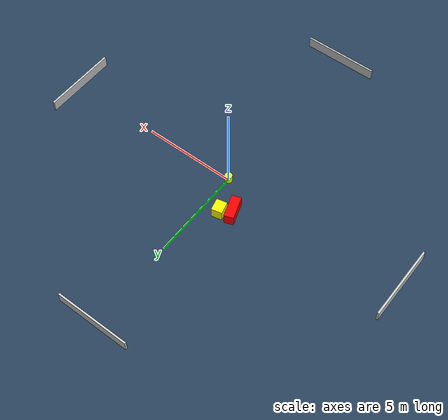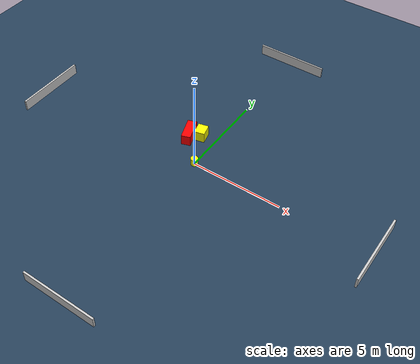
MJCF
<?xml version="1.0" ?>
<mujoco model="generated_environment">
  <option timestep="0.01" integrator="RK4" cone="elliptic"/>
  <default>
    <geom density="1"/>
  </default>
  <asset>
    <texture builtin="gradient" height="3072" name="skybox" rgb1="0.3 0.5 0.7" rgb2="0 0 0" type="skybox" width="512"/>
    <texture builtin="checker" height="300" name="groundplane" rgb1="0.2 0.3 0.4" rgb2="0.1 0.2 0.3" type="2d" width="300"/>
    <material name="groundplane" reflectance="0.2" texrepeat="5 5" texture="groundplane"/>
  </asset>
  <worldbody>
    <light dir="0 0 -1" directional="true" pos="0 0 1.5"/>
    <geom condim="3" friction="0.5 0.005 0.001" material="groundplane" name="floor" pos="0 0 0" size="0 0 0.05" type="plane"/>
    <body name="walls">
      <geom name="wall_1" condim="4" pos="-10.0 0.0 0.3" rgba="0.800000011920929 0.800000011920929 0.800000011920929 1.0" size="0.05 2.0 0.3" type="box"/>
      <geom name="wall_2" condim="4" pos="10.0 0.0 0.3" rgba="0.800000011920929 0.800000011920929 0.800000011920929 1.0" size="0.05 2.0 0.3" type="box"/>
      <geom name="wall_3" condim="4" pos="0.0 -10.0 0.3" rgba="0.800000011920929 0.800000011920929 0.800000011920929 1.0" size="2.0 0.05 0.3" type="box"/>
      <geom name="wall_4" condim="4" pos="0.0 10.0 0.3" rgba="0.800000011920929 0.800000011920929 0.800000011920929 1.0" size="2.0 0.05 0.3" type="box"/>
    </body>
    <body name="robot">
      <joint name="joint_x" type="slide" pos="0 0 0" axis="1 0 0"/>
      <joint name="joint_y" type="slide" pos="0 0 0" axis="0 1 0"/>
      <geom name="robot" type="cylinder" pos="0.0 0.0 0.2" size="0.2 0.2 0.0" mass="5.0" friction="1.0 0.005 0.0001" condim="4" rgba="1.0 1.0 0.0 1.0"/>
    </body>
    <body name="obstacle_1_movable">
      <geom name="obstacle_1_movable" condim="4" pos="-0.8327670190395129 1.8140060769972677 0.3" euler="0 0 103.26097498460123" friction="0.0 0.005 0.001" rgba="1.0 1.0 0.0 1.0" size="0.33442663188785593 0.28376750781476295 0.3" type="box" mass="0.1"/>
      <joint type="free"/>
    </body>
    <body name="obstacle_2_static">
      <geom name="obstacle_2_static" condim="4" pos="-1.3715144421618555 1.450996754844264 0.3" euler="0 0 288.92791550336517" friction="0.0 0.005 0.001" rgba="1.0 0.0 0.0 1.0" size="0.6244517820120723 0.25112689505363583 0.3" type="box"/>
    </body>
  </worldbody>
  <actuator>
    <motor name="actuator_x" joint="joint_x" gear="1" ctrlrange="-1 1"/>
    <motor name="actuator_y" joint="joint_y" gear="1" ctrlrange="-1 1"/>
  </actuator>
</mujoco>
